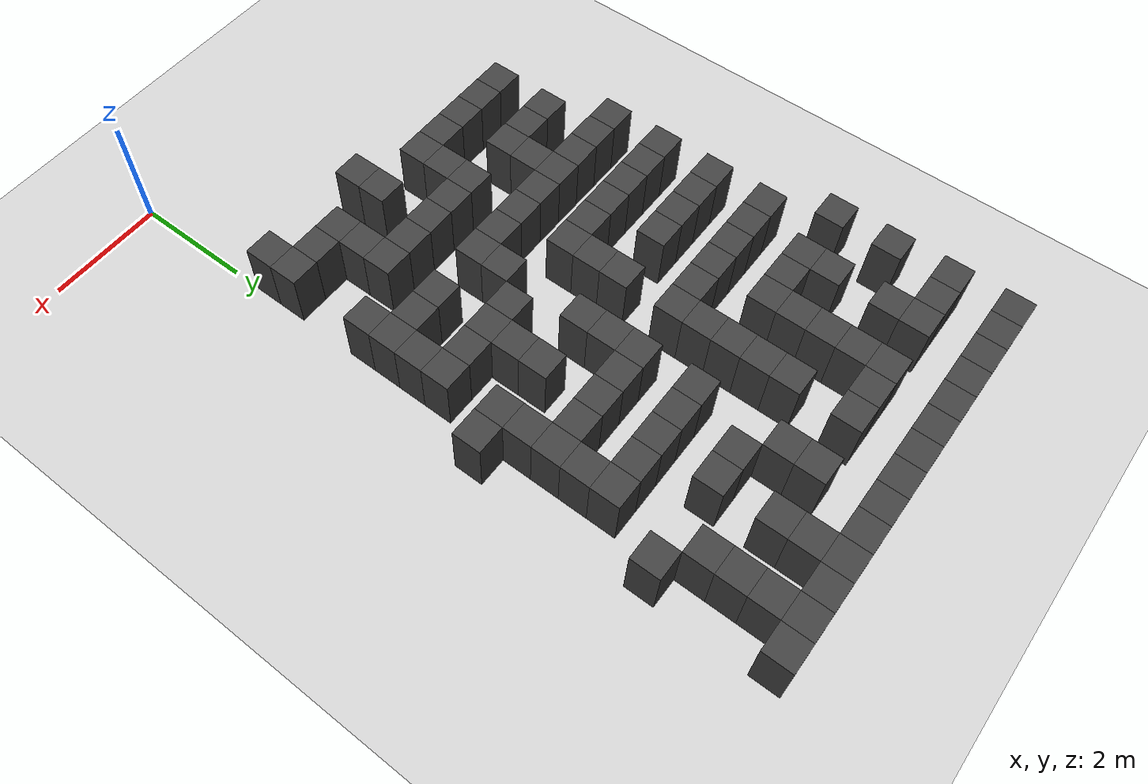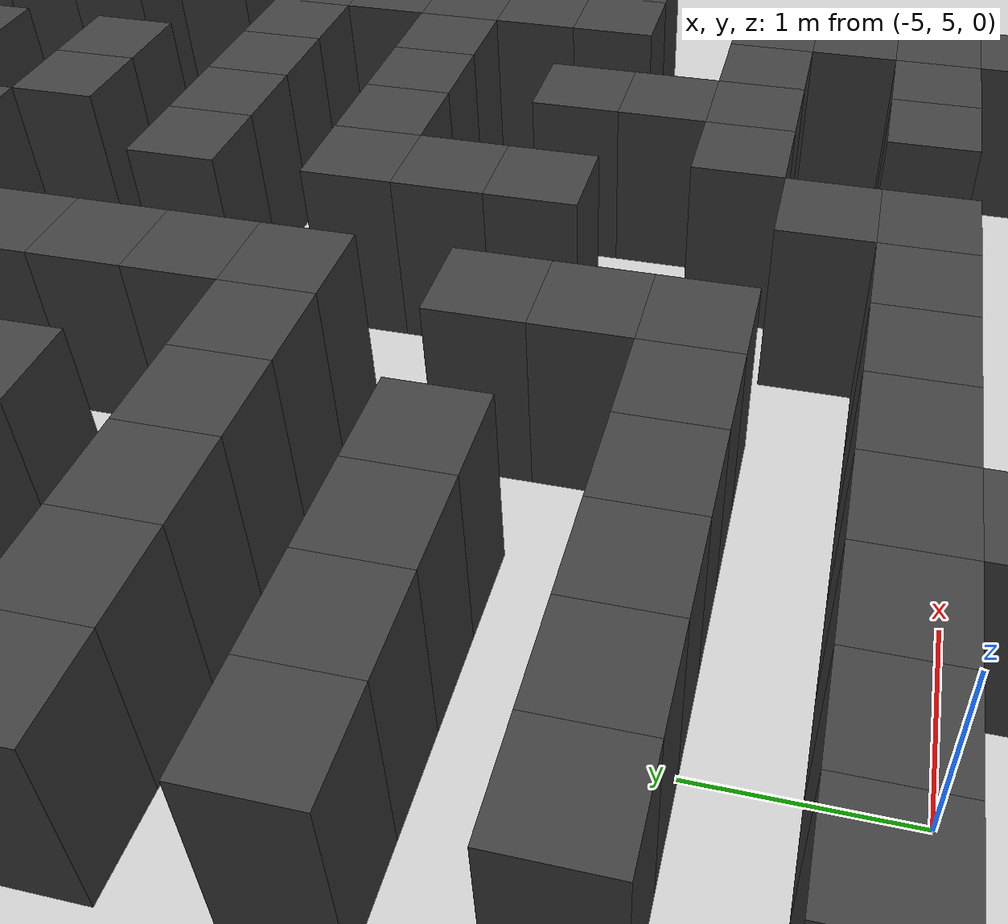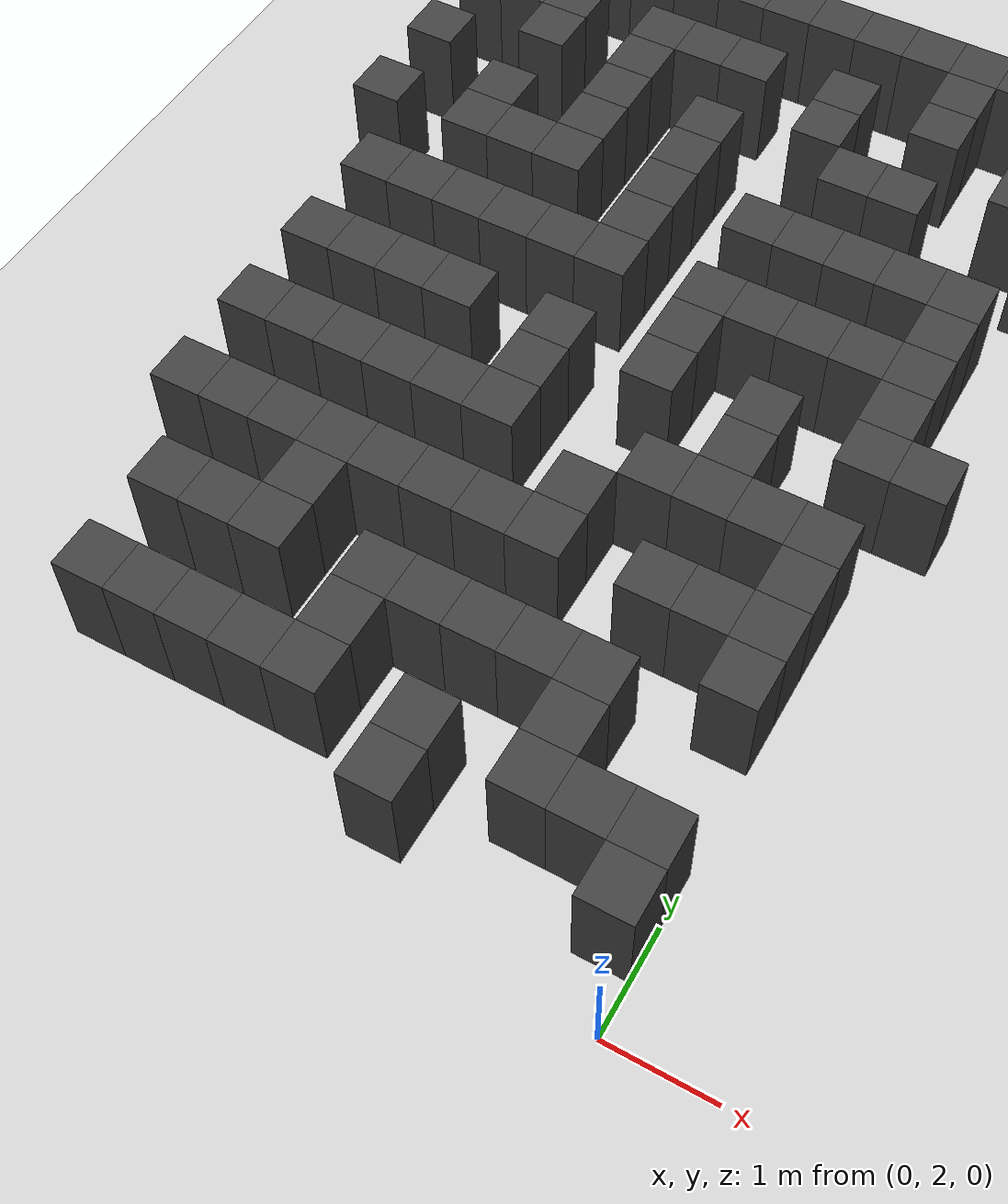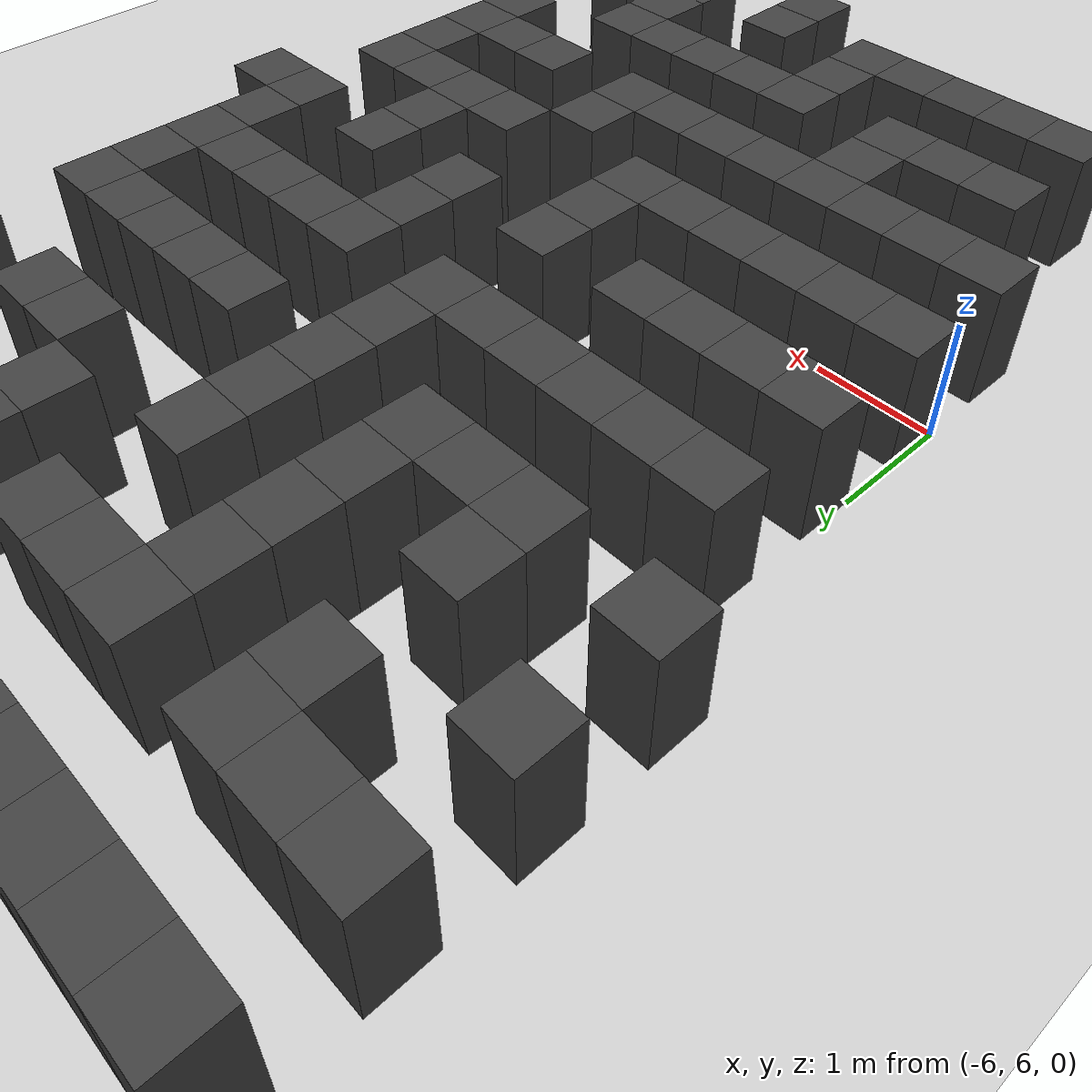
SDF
<sdf version="1.7">
 <world name="map_15293">
  <model name="ground_plane">
   <static>true</static>
   <link name="link">
    <collision name="collision">
     <geometry><plane><normal>0 0 1</normal><size>200 200</size></plane></geometry>
    </collision>
    <visual name="visual">
     <geometry><plane><normal>0 0 1</normal><size>200 200</size></plane></geometry>
     <material><ambient>0.8 0.8 0.8 1</ambient><diffuse>0.8 0.8 0.8 1</diffuse></material>
    </visual>
   </link>
  </model>
  <model name="maze_environment">
   <static>true</static>
   <link name="wall_12">
    <pose>-6.250 12.250 0.500 0 0 0</pose>
    <collision name="col"><geometry><box><size>0.5 0.5 1.0</size></box></geometry></collision>
    <visual name="vis">
     <geometry><box><size>0.5 0.5 1.0</size></box></geometry>
     <material><ambient>0.15 0.15 0.15 1</ambient><diffuse>0.25 0.25 0.25 1</diffuse></material>
    </visual>
   </link>
   <link name="wall_13">
    <pose>-5.750 12.250 0.500 0 0 0</pose>
    <collision name="col"><geometry><box><size>0.5 0.5 1.0</size></box></geometry></collision>
    <visual name="vis">
     <geometry><box><size>0.5 0.5 1.0</size></box></geometry>
     <material><ambient>0.15 0.15 0.15 1</ambient><diffuse>0.25 0.25 0.25 1</diffuse></material>
    </visual>
   </link>
   <link name="wall_14">
    <pose>-5.250 12.250 0.500 0 0 0</pose>
    <collision name="col"><geometry><box><size>0.5 0.5 1.0</size></box></geometry></collision>
    <visual name="vis">
     <geometry><box><size>0.5 0.5 1.0</size></box></geometry>
     <material><ambient>0.15 0.15 0.15 1</ambient><diffuse>0.25 0.25 0.25 1</diffuse></material>
    </visual>
   </link>
   <link name="wall_15">
    <pose>-4.750 12.250 0.500 0 0 0</pose>
    <collision name="col"><geometry><box><size>0.5 0.5 1.0</size></box></geometry></collision>
    <visual name="vis">
     <geometry><box><size>0.5 0.5 1.0</size></box></geometry>
     <material><ambient>0.15 0.15 0.15 1</ambient><diffuse>0.25 0.25 0.25 1</diffuse></material>
    </visual>
   </link>
   <link name="wall_16">
    <pose>-4.250 12.250 0.500 0 0 0</pose>
    <collision name="col"><geometry><box><size>0.5 0.5 1.0</size></box></geometry></collision>
    <visual name="vis">
     <geometry><box><size>0.5 0.5 1.0</size></box></geometry>
     <material><ambient>0.15 0.15 0.15 1</ambient><diffuse>0.25 0.25 0.25 1</diffuse></material>
    </visual>
   </link>
   <link name="wall_17">
    <pose>-3.750 12.250 0.500 0 0 0</pose>
    <collision name="col"><geometry><box><size>0.5 0.5 1.0</size></box></geometry></collision>
    <visual name="vis">
     <geometry><box><size>0.5 0.5 1.0</size></box></geometry>
     <material><ambient>0.15 0.15 0.15 1</ambient><diffuse>0.25 0.25 0.25 1</diffuse></material>
    </visual>
   </link>
   <link name="wall_18">
    <pose>-3.250 12.250 0.500 0 0 0</pose>
    <collision name="col"><geometry><box><size>0.5 0.5 1.0</size></box></geometry></collision>
    <visual name="vis">
     <geometry><box><size>0.5 0.5 1.0</size></box></geometry>
     <material><ambient>0.15 0.15 0.15 1</ambient><diffuse>0.25 0.25 0.25 1</diffuse></material>
    </visual>
   </link>
   <link name="wall_19">
    <pose>-2.750 12.250 0.500 0 0 0</pose>
    <collision name="col"><geometry><box><size>0.5 0.5 1.0</size></box></geometry></collision>
    <visual name="vis">
     <geometry><box><size>0.5 0.5 1.0</size></box></geometry>
     <material><ambient>0.15 0.15 0.15 1</ambient><diffuse>0.25 0.25 0.25 1</diffuse></material>
    </visual>
   </link>
   <link name="wall_20">
    <pose>-2.250 12.250 0.500 0 0 0</pose>
    <collision name="col"><geometry><box><size>0.5 0.5 1.0</size></box></geometry></collision>
    <visual name="vis">
     <geometry><box><size>0.5 0.5 1.0</size></box></geometry>
     <material><ambient>0.15 0.15 0.15 1</ambient><diffuse>0.25 0.25 0.25 1</diffuse></material>
    </visual>
   </link>
   <link name="wall_21">
    <pose>-1.750 12.250 0.500 0 0 0</pose>
    <collision name="col"><geometry><box><size>0.5 0.5 1.0</size></box></geometry></collision>
    <visual name="vis">
     <geometry><box><size>0.5 0.5 1.0</size></box></geometry>
     <material><ambient>0.15 0.15 0.15 1</ambient><diffuse>0.25 0.25 0.25 1</diffuse></material>
    </visual>
   </link>
   <link name="wall_22">
    <pose>-1.250 12.250 0.500 0 0 0</pose>
    <collision name="col"><geometry><box><size>0.5 0.5 1.0</size></box></geometry></collision>
    <visual name="vis">
     <geometry><box><size>0.5 0.5 1.0</size></box></geometry>
     <material><ambient>0.15 0.15 0.15 1</ambient><diffuse>0.25 0.25 0.25 1</diffuse></material>
    </visual>
   </link>
   <link name="wall_23">
    <pose>-0.750 12.250 0.500 0 0 0</pose>
    <collision name="col"><geometry><box><size>0.5 0.5 1.0</size></box></geometry></collision>
    <visual name="vis">
     <geometry><box><size>0.5 0.5 1.0</size></box></geometry>
     <material><ambient>0.15 0.15 0.15 1</ambient><diffuse>0.25 0.25 0.25 1</diffuse></material>
    </visual>
   </link>
   <link name="wall_24">
    <pose>-0.250 12.250 0.500 0 0 0</pose>
    <collision name="col"><geometry><box><size>0.5 0.5 1.0</size></box></geometry></collision>
    <visual name="vis">
     <geometry><box><size>0.5 0.5 1.0</size></box></geometry>
     <material><ambient>0.15 0.15 0.15 1</ambient><diffuse>0.25 0.25 0.25 1</diffuse></material>
    </visual>
   </link>
   <link name="wall_25">
    <pose>0.250 12.250 0.500 0 0 0</pose>
    <collision name="col"><geometry><box><size>0.5 0.5 1.0</size></box></geometry></collision>
    <visual name="vis">
     <geometry><box><size>0.5 0.5 1.0</size></box></geometry>
     <material><ambient>0.15 0.15 0.15 1</ambient><diffuse>0.25 0.25 0.25 1</diffuse></material>
    </visual>
   </link>
   <link name="wall_53">
    <pose>-1.250 11.750 0.500 0 0 0</pose>
    <collision name="col"><geometry><box><size>0.5 0.5 1.0</size></box></geometry></collision>
    <visual name="vis">
     <geometry><box><size>0.5 0.5 1.0</size></box></geometry>
     <material><ambient>0.15 0.15 0.15 1</ambient><diffuse>0.25 0.25 0.25 1</diffuse></material>
    </visual>
   </link>
   <link name="wall_54">
    <pose>-0.250 11.750 0.500 0 0 0</pose>
    <collision name="col"><geometry><box><size>0.5 0.5 1.0</size></box></geometry></collision>
    <visual name="vis">
     <geometry><box><size>0.5 0.5 1.0</size></box></geometry>
     <material><ambient>0.15 0.15 0.15 1</ambient><diffuse>0.25 0.25 0.25 1</diffuse></material>
    </visual>
   </link>
   <link name="wall_65">
    <pose>-6.250 11.250 0.500 0 0 0</pose>
    <collision name="col"><geometry><box><size>0.5 0.5 1.0</size></box></geometry></collision>
    <visual name="vis">
     <geometry><box><size>0.5 0.5 1.0</size></box></geometry>
     <material><ambient>0.15 0.15 0.15 1</ambient><diffuse>0.25 0.25 0.25 1</diffuse></material>
    </visual>
   </link>
   <link name="wall_66">
    <pose>-5.750 11.250 0.500 0 0 0</pose>
    <collision name="col"><geometry><box><size>0.5 0.5 1.0</size></box></geometry></collision>
    <visual name="vis">
     <geometry><box><size>0.5 0.5 1.0</size></box></geometry>
     <material><ambient>0.15 0.15 0.15 1</ambient><diffuse>0.25 0.25 0.25 1</diffuse></material>
    </visual>
   </link>
   <link name="wall_67">
    <pose>-5.250 11.250 0.500 0 0 0</pose>
    <collision name="col"><geometry><box><size>0.5 0.5 1.0</size></box></geometry></collision>
    <visual name="vis">
     <geometry><box><size>0.5 0.5 1.0</size></box></geometry>
     <material><ambient>0.15 0.15 0.15 1</ambient><diffuse>0.25 0.25 0.25 1</diffuse></material>
    </visual>
   </link>
   <link name="wall_68">
    <pose>-4.250 11.250 0.500 0 0 0</pose>
    <collision name="col"><geometry><box><size>0.5 0.5 1.0</size></box></geometry></collision>
    <visual name="vis">
     <geometry><box><size>0.5 0.5 1.0</size></box></geometry>
     <material><ambient>0.15 0.15 0.15 1</ambient><diffuse>0.25 0.25 0.25 1</diffuse></material>
    </visual>
   </link>
   <link name="wall_69">
    <pose>-3.750 11.250 0.500 0 0 0</pose>
    <collision name="col"><geometry><box><size>0.5 0.5 1.0</size></box></geometry></collision>
    <visual name="vis">
     <geometry><box><size>0.5 0.5 1.0</size></box></geometry>
     <material><ambient>0.15 0.15 0.15 1</ambient><diffuse>0.25 0.25 0.25 1</diffuse></material>
    </visual>
   </link>
   <link name="wall_70">
    <pose>-3.250 11.250 0.500 0 0 0</pose>
    <collision name="col"><geometry><box><size>0.5 0.5 1.0</size></box></geometry></collision>
    <visual name="vis">
     <geometry><box><size>0.5 0.5 1.0</size></box></geometry>
     <material><ambient>0.15 0.15 0.15 1</ambient><diffuse>0.25 0.25 0.25 1</diffuse></material>
    </visual>
   </link>
   <link name="wall_71">
    <pose>-2.250 11.250 0.500 0 0 0</pose>
    <collision name="col"><geometry><box><size>0.5 0.5 1.0</size></box></geometry></collision>
    <visual name="vis">
     <geometry><box><size>0.5 0.5 1.0</size></box></geometry>
     <material><ambient>0.15 0.15 0.15 1</ambient><diffuse>0.25 0.25 0.25 1</diffuse></material>
    </visual>
   </link>
   <link name="wall_72">
    <pose>-1.250 11.250 0.500 0 0 0</pose>
    <collision name="col"><geometry><box><size>0.5 0.5 1.0</size></box></geometry></collision>
    <visual name="vis">
     <geometry><box><size>0.5 0.5 1.0</size></box></geometry>
     <material><ambient>0.15 0.15 0.15 1</ambient><diffuse>0.25 0.25 0.25 1</diffuse></material>
    </visual>
   </link>
   <link name="wall_73">
    <pose>-0.250 11.250 0.500 0 0 0</pose>
    <collision name="col"><geometry><box><size>0.5 0.5 1.0</size></box></geometry></collision>
    <visual name="vis">
     <geometry><box><size>0.5 0.5 1.0</size></box></geometry>
     <material><ambient>0.15 0.15 0.15 1</ambient><diffuse>0.25 0.25 0.25 1</diffuse></material>
    </visual>
   </link>
   <link name="wall_91">
    <pose>-5.250 10.750 0.500 0 0 0</pose>
    <collision name="col"><geometry><box><size>0.5 0.5 1.0</size></box></geometry></collision>
    <visual name="vis">
     <geometry><box><size>0.5 0.5 1.0</size></box></geometry>
     <material><ambient>0.15 0.15 0.15 1</ambient><diffuse>0.25 0.25 0.25 1</diffuse></material>
    </visual>
   </link>
   <link name="wall_92">
    <pose>-4.250 10.750 0.500 0 0 0</pose>
    <collision name="col"><geometry><box><size>0.5 0.5 1.0</size></box></geometry></collision>
    <visual name="vis">
     <geometry><box><size>0.5 0.5 1.0</size></box></geometry>
     <material><ambient>0.15 0.15 0.15 1</ambient><diffuse>0.25 0.25 0.25 1</diffuse></material>
    </visual>
   </link>
   <link name="wall_93">
    <pose>-2.250 10.750 0.500 0 0 0</pose>
    <collision name="col"><geometry><box><size>0.5 0.5 1.0</size></box></geometry></collision>
    <visual name="vis">
     <geometry><box><size>0.5 0.5 1.0</size></box></geometry>
     <material><ambient>0.15 0.15 0.15 1</ambient><diffuse>0.25 0.25 0.25 1</diffuse></material>
    </visual>
   </link>
   <link name="wall_94">
    <pose>-0.250 10.750 0.500 0 0 0</pose>
    <collision name="col"><geometry><box><size>0.5 0.5 1.0</size></box></geometry></collision>
    <visual name="vis">
     <geometry><box><size>0.5 0.5 1.0</size></box></geometry>
     <material><ambient>0.15 0.15 0.15 1</ambient><diffuse>0.25 0.25 0.25 1</diffuse></material>
    </visual>
   </link>
   <link name="wall_110">
    <pose>-6.250 10.250 0.500 0 0 0</pose>
    <collision name="col"><geometry><box><size>0.5 0.5 1.0</size></box></geometry></collision>
    <visual name="vis">
     <geometry><box><size>0.5 0.5 1.0</size></box></geometry>
     <material><ambient>0.15 0.15 0.15 1</ambient><diffuse>0.25 0.25 0.25 1</diffuse></material>
    </visual>
   </link>
   <link name="wall_111">
    <pose>-4.250 10.250 0.500 0 0 0</pose>
    <collision name="col"><geometry><box><size>0.5 0.5 1.0</size></box></geometry></collision>
    <visual name="vis">
     <geometry><box><size>0.5 0.5 1.0</size></box></geometry>
     <material><ambient>0.15 0.15 0.15 1</ambient><diffuse>0.25 0.25 0.25 1</diffuse></material>
    </visual>
   </link>
   <link name="wall_112">
    <pose>-3.250 10.250 0.500 0 0 0</pose>
    <collision name="col"><geometry><box><size>0.5 0.5 1.0</size></box></geometry></collision>
    <visual name="vis">
     <geometry><box><size>0.5 0.5 1.0</size></box></geometry>
     <material><ambient>0.15 0.15 0.15 1</ambient><diffuse>0.25 0.25 0.25 1</diffuse></material>
    </visual>
   </link>
   <link name="wall_113">
    <pose>-1.750 10.250 0.500 0 0 0</pose>
    <collision name="col"><geometry><box><size>0.5 0.5 1.0</size></box></geometry></collision>
    <visual name="vis">
     <geometry><box><size>0.5 0.5 1.0</size></box></geometry>
     <material><ambient>0.15 0.15 0.15 1</ambient><diffuse>0.25 0.25 0.25 1</diffuse></material>
    </visual>
   </link>
   <link name="wall_114">
    <pose>-1.250 10.250 0.500 0 0 0</pose>
    <collision name="col"><geometry><box><size>0.5 0.5 1.0</size></box></geometry></collision>
    <visual name="vis">
     <geometry><box><size>0.5 0.5 1.0</size></box></geometry>
     <material><ambient>0.15 0.15 0.15 1</ambient><diffuse>0.25 0.25 0.25 1</diffuse></material>
    </visual>
   </link>
   <link name="wall_115">
    <pose>0.250 10.250 0.500 0 0 0</pose>
    <collision name="col"><geometry><box><size>0.5 0.5 1.0</size></box></geometry></collision>
    <visual name="vis">
     <geometry><box><size>0.5 0.5 1.0</size></box></geometry>
     <material><ambient>0.15 0.15 0.15 1</ambient><diffuse>0.25 0.25 0.25 1</diffuse></material>
    </visual>
   </link>
   <link name="wall_136">
    <pose>-5.250 9.750 0.500 0 0 0</pose>
    <collision name="col"><geometry><box><size>0.5 0.5 1.0</size></box></geometry></collision>
    <visual name="vis">
     <geometry><box><size>0.5 0.5 1.0</size></box></geometry>
     <material><ambient>0.15 0.15 0.15 1</ambient><diffuse>0.25 0.25 0.25 1</diffuse></material>
    </visual>
   </link>
   <link name="wall_137">
    <pose>-4.250 9.750 0.500 0 0 0</pose>
    <collision name="col"><geometry><box><size>0.5 0.5 1.0</size></box></geometry></collision>
    <visual name="vis">
     <geometry><box><size>0.5 0.5 1.0</size></box></geometry>
     <material><ambient>0.15 0.15 0.15 1</ambient><diffuse>0.25 0.25 0.25 1</diffuse></material>
    </visual>
   </link>
   <link name="wall_138">
    <pose>-3.250 9.750 0.500 0 0 0</pose>
    <collision name="col"><geometry><box><size>0.5 0.5 1.0</size></box></geometry></collision>
    <visual name="vis">
     <geometry><box><size>0.5 0.5 1.0</size></box></geometry>
     <material><ambient>0.15 0.15 0.15 1</ambient><diffuse>0.25 0.25 0.25 1</diffuse></material>
    </visual>
   </link>
   <link name="wall_153">
    <pose>-6.250 9.250 0.500 0 0 0</pose>
    <collision name="col"><geometry><box><size>0.5 0.5 1.0</size></box></geometry></collision>
    <visual name="vis">
     <geometry><box><size>0.5 0.5 1.0</size></box></geometry>
     <material><ambient>0.15 0.15 0.15 1</ambient><diffuse>0.25 0.25 0.25 1</diffuse></material>
    </visual>
   </link>
   <link name="wall_154">
    <pose>-5.250 9.250 0.500 0 0 0</pose>
    <collision name="col"><geometry><box><size>0.5 0.5 1.0</size></box></geometry></collision>
    <visual name="vis">
     <geometry><box><size>0.5 0.5 1.0</size></box></geometry>
     <material><ambient>0.15 0.15 0.15 1</ambient><diffuse>0.25 0.25 0.25 1</diffuse></material>
    </visual>
   </link>
   <link name="wall_155">
    <pose>-4.750 9.250 0.500 0 0 0</pose>
    <collision name="col"><geometry><box><size>0.5 0.5 1.0</size></box></geometry></collision>
    <visual name="vis">
     <geometry><box><size>0.5 0.5 1.0</size></box></geometry>
     <material><ambient>0.15 0.15 0.15 1</ambient><diffuse>0.25 0.25 0.25 1</diffuse></material>
    </visual>
   </link>
   <link name="wall_156">
    <pose>-4.250 9.250 0.500 0 0 0</pose>
    <collision name="col"><geometry><box><size>0.5 0.5 1.0</size></box></geometry></collision>
    <visual name="vis">
     <geometry><box><size>0.5 0.5 1.0</size></box></geometry>
     <material><ambient>0.15 0.15 0.15 1</ambient><diffuse>0.25 0.25 0.25 1</diffuse></material>
    </visual>
   </link>
   <link name="wall_157">
    <pose>-3.250 9.250 0.500 0 0 0</pose>
    <collision name="col"><geometry><box><size>0.5 0.5 1.0</size></box></geometry></collision>
    <visual name="vis">
     <geometry><box><size>0.5 0.5 1.0</size></box></geometry>
     <material><ambient>0.15 0.15 0.15 1</ambient><diffuse>0.25 0.25 0.25 1</diffuse></material>
    </visual>
   </link>
   <link name="wall_158">
    <pose>-2.250 9.250 0.500 0 0 0</pose>
    <collision name="col"><geometry><box><size>0.5 0.5 1.0</size></box></geometry></collision>
    <visual name="vis">
     <geometry><box><size>0.5 0.5 1.0</size></box></geometry>
     <material><ambient>0.15 0.15 0.15 1</ambient><diffuse>0.25 0.25 0.25 1</diffuse></material>
    </visual>
   </link>
   <link name="wall_159">
    <pose>-1.750 9.250 0.500 0 0 0</pose>
    <collision name="col"><geometry><box><size>0.5 0.5 1.0</size></box></geometry></collision>
    <visual name="vis">
     <geometry><box><size>0.5 0.5 1.0</size></box></geometry>
     <material><ambient>0.15 0.15 0.15 1</ambient><diffuse>0.25 0.25 0.25 1</diffuse></material>
    </visual>
   </link>
   <link name="wall_160">
    <pose>-1.250 9.250 0.500 0 0 0</pose>
    <collision name="col"><geometry><box><size>0.5 0.5 1.0</size></box></geometry></collision>
    <visual name="vis">
     <geometry><box><size>0.5 0.5 1.0</size></box></geometry>
     <material><ambient>0.15 0.15 0.15 1</ambient><diffuse>0.25 0.25 0.25 1</diffuse></material>
    </visual>
   </link>
   <link name="wall_161">
    <pose>-0.750 9.250 0.500 0 0 0</pose>
    <collision name="col"><geometry><box><size>0.5 0.5 1.0</size></box></geometry></collision>
    <visual name="vis">
     <geometry><box><size>0.5 0.5 1.0</size></box></geometry>
     <material><ambient>0.15 0.15 0.15 1</ambient><diffuse>0.25 0.25 0.25 1</diffuse></material>
    </visual>
   </link>
   <link name="wall_162">
    <pose>-0.250 9.250 0.500 0 0 0</pose>
    <collision name="col"><geometry><box><size>0.5 0.5 1.0</size></box></geometry></collision>
    <visual name="vis">
     <geometry><box><size>0.5 0.5 1.0</size></box></geometry>
     <material><ambient>0.15 0.15 0.15 1</ambient><diffuse>0.25 0.25 0.25 1</diffuse></material>
    </visual>
   </link>
   <link name="wall_182">
    <pose>-3.250 8.750 0.500 0 0 0</pose>
    <collision name="col"><geometry><box><size>0.5 0.5 1.0</size></box></geometry></collision>
    <visual name="vis">
     <geometry><box><size>0.5 0.5 1.0</size></box></geometry>
     <material><ambient>0.15 0.15 0.15 1</ambient><diffuse>0.25 0.25 0.25 1</diffuse></material>
    </visual>
   </link>
   <link name="wall_183">
    <pose>-0.250 8.750 0.500 0 0 0</pose>
    <collision name="col"><geometry><box><size>0.5 0.5 1.0</size></box></geometry></collision>
    <visual name="vis">
     <geometry><box><size>0.5 0.5 1.0</size></box></geometry>
     <material><ambient>0.15 0.15 0.15 1</ambient><diffuse>0.25 0.25 0.25 1</diffuse></material>
    </visual>
   </link>
   <link name="wall_200">
    <pose>-5.750 8.250 0.500 0 0 0</pose>
    <collision name="col"><geometry><box><size>0.5 0.5 1.0</size></box></geometry></collision>
    <visual name="vis">
     <geometry><box><size>0.5 0.5 1.0</size></box></geometry>
     <material><ambient>0.15 0.15 0.15 1</ambient><diffuse>0.25 0.25 0.25 1</diffuse></material>
    </visual>
   </link>
   <link name="wall_201">
    <pose>-5.250 8.250 0.500 0 0 0</pose>
    <collision name="col"><geometry><box><size>0.5 0.5 1.0</size></box></geometry></collision>
    <visual name="vis">
     <geometry><box><size>0.5 0.5 1.0</size></box></geometry>
     <material><ambient>0.15 0.15 0.15 1</ambient><diffuse>0.25 0.25 0.25 1</diffuse></material>
    </visual>
   </link>
   <link name="wall_202">
    <pose>-4.750 8.250 0.500 0 0 0</pose>
    <collision name="col"><geometry><box><size>0.5 0.5 1.0</size></box></geometry></collision>
    <visual name="vis">
     <geometry><box><size>0.5 0.5 1.0</size></box></geometry>
     <material><ambient>0.15 0.15 0.15 1</ambient><diffuse>0.25 0.25 0.25 1</diffuse></material>
    </visual>
   </link>
   <link name="wall_203">
    <pose>-4.250 8.250 0.500 0 0 0</pose>
    <collision name="col"><geometry><box><size>0.5 0.5 1.0</size></box></geometry></collision>
    <visual name="vis">
     <geometry><box><size>0.5 0.5 1.0</size></box></geometry>
     <material><ambient>0.15 0.15 0.15 1</ambient><diffuse>0.25 0.25 0.25 1</diffuse></material>
    </visual>
   </link>
   <link name="wall_204">
    <pose>-3.750 8.250 0.500 0 0 0</pose>
    <collision name="col"><geometry><box><size>0.5 0.5 1.0</size></box></geometry></collision>
    <visual name="vis">
     <geometry><box><size>0.5 0.5 1.0</size></box></geometry>
     <material><ambient>0.15 0.15 0.15 1</ambient><diffuse>0.25 0.25 0.25 1</diffuse></material>
    </visual>
   </link>
   <link name="wall_205">
    <pose>-3.250 8.250 0.500 0 0 0</pose>
    <collision name="col"><geometry><box><size>0.5 0.5 1.0</size></box></geometry></collision>
    <visual name="vis">
     <geometry><box><size>0.5 0.5 1.0</size></box></geometry>
     <material><ambient>0.15 0.15 0.15 1</ambient><diffuse>0.25 0.25 0.25 1</diffuse></material>
    </visual>
   </link>
   <link name="wall_206">
    <pose>-2.250 8.250 0.500 0 0 0</pose>
    <collision name="col"><geometry><box><size>0.5 0.5 1.0</size></box></geometry></collision>
    <visual name="vis">
     <geometry><box><size>0.5 0.5 1.0</size></box></geometry>
     <material><ambient>0.15 0.15 0.15 1</ambient><diffuse>0.25 0.25 0.25 1</diffuse></material>
    </visual>
   </link>
   <link name="wall_207">
    <pose>-1.750 8.250 0.500 0 0 0</pose>
    <collision name="col"><geometry><box><size>0.5 0.5 1.0</size></box></geometry></collision>
    <visual name="vis">
     <geometry><box><size>0.5 0.5 1.0</size></box></geometry>
     <material><ambient>0.15 0.15 0.15 1</ambient><diffuse>0.25 0.25 0.25 1</diffuse></material>
    </visual>
   </link>
   <link name="wall_208">
    <pose>-1.250 8.250 0.500 0 0 0</pose>
    <collision name="col"><geometry><box><size>0.5 0.5 1.0</size></box></geometry></collision>
    <visual name="vis">
     <geometry><box><size>0.5 0.5 1.0</size></box></geometry>
     <material><ambient>0.15 0.15 0.15 1</ambient><diffuse>0.25 0.25 0.25 1</diffuse></material>
    </visual>
   </link>
   <link name="wall_209">
    <pose>-0.750 8.250 0.500 0 0 0</pose>
    <collision name="col"><geometry><box><size>0.5 0.5 1.0</size></box></geometry></collision>
    <visual name="vis">
     <geometry><box><size>0.5 0.5 1.0</size></box></geometry>
     <material><ambient>0.15 0.15 0.15 1</ambient><diffuse>0.25 0.25 0.25 1</diffuse></material>
    </visual>
   </link>
   <link name="wall_210">
    <pose>-0.250 8.250 0.500 0 0 0</pose>
    <collision name="col"><geometry><box><size>0.5 0.5 1.0</size></box></geometry></collision>
    <visual name="vis">
     <geometry><box><size>0.5 0.5 1.0</size></box></geometry>
     <material><ambient>0.15 0.15 0.15 1</ambient><diffuse>0.25 0.25 0.25 1</diffuse></material>
    </visual>
   </link>
   <link name="wall_226">
    <pose>-2.250 7.750 0.500 0 0 0</pose>
    <collision name="col"><geometry><box><size>0.5 0.5 1.0</size></box></geometry></collision>
    <visual name="vis">
     <geometry><box><size>0.5 0.5 1.0</size></box></geometry>
     <material><ambient>0.15 0.15 0.15 1</ambient><diffuse>0.25 0.25 0.25 1</diffuse></material>
    </visual>
   </link>
   <link name="wall_227">
    <pose>-0.250 7.750 0.500 0 0 0</pose>
    <collision name="col"><geometry><box><size>0.5 0.5 1.0</size></box></geometry></collision>
    <visual name="vis">
     <geometry><box><size>0.5 0.5 1.0</size></box></geometry>
     <material><ambient>0.15 0.15 0.15 1</ambient><diffuse>0.25 0.25 0.25 1</diffuse></material>
    </visual>
   </link>
   <link name="wall_245">
    <pose>-5.750 7.250 0.500 0 0 0</pose>
    <collision name="col"><geometry><box><size>0.5 0.5 1.0</size></box></geometry></collision>
    <visual name="vis">
     <geometry><box><size>0.5 0.5 1.0</size></box></geometry>
     <material><ambient>0.15 0.15 0.15 1</ambient><diffuse>0.25 0.25 0.25 1</diffuse></material>
    </visual>
   </link>
   <link name="wall_246">
    <pose>-5.250 7.250 0.500 0 0 0</pose>
    <collision name="col"><geometry><box><size>0.5 0.5 1.0</size></box></geometry></collision>
    <visual name="vis">
     <geometry><box><size>0.5 0.5 1.0</size></box></geometry>
     <material><ambient>0.15 0.15 0.15 1</ambient><diffuse>0.25 0.25 0.25 1</diffuse></material>
    </visual>
   </link>
   <link name="wall_247">
    <pose>-4.750 7.250 0.500 0 0 0</pose>
    <collision name="col"><geometry><box><size>0.5 0.5 1.0</size></box></geometry></collision>
    <visual name="vis">
     <geometry><box><size>0.5 0.5 1.0</size></box></geometry>
     <material><ambient>0.15 0.15 0.15 1</ambient><diffuse>0.25 0.25 0.25 1</diffuse></material>
    </visual>
   </link>
   <link name="wall_248">
    <pose>-4.250 7.250 0.500 0 0 0</pose>
    <collision name="col"><geometry><box><size>0.5 0.5 1.0</size></box></geometry></collision>
    <visual name="vis">
     <geometry><box><size>0.5 0.5 1.0</size></box></geometry>
     <material><ambient>0.15 0.15 0.15 1</ambient><diffuse>0.25 0.25 0.25 1</diffuse></material>
    </visual>
   </link>
   <link name="wall_249">
    <pose>-3.250 7.250 0.500 0 0 0</pose>
    <collision name="col"><geometry><box><size>0.5 0.5 1.0</size></box></geometry></collision>
    <visual name="vis">
     <geometry><box><size>0.5 0.5 1.0</size></box></geometry>
     <material><ambient>0.15 0.15 0.15 1</ambient><diffuse>0.25 0.25 0.25 1</diffuse></material>
    </visual>
   </link>
   <link name="wall_250">
    <pose>-2.250 7.250 0.500 0 0 0</pose>
    <collision name="col"><geometry><box><size>0.5 0.5 1.0</size></box></geometry></collision>
    <visual name="vis">
     <geometry><box><size>0.5 0.5 1.0</size></box></geometry>
     <material><ambient>0.15 0.15 0.15 1</ambient><diffuse>0.25 0.25 0.25 1</diffuse></material>
    </visual>
   </link>
   <link name="wall_251">
    <pose>-1.250 7.250 0.500 0 0 0</pose>
    <collision name="col"><geometry><box><size>0.5 0.5 1.0</size></box></geometry></collision>
    <visual name="vis">
     <geometry><box><size>0.5 0.5 1.0</size></box></geometry>
     <material><ambient>0.15 0.15 0.15 1</ambient><diffuse>0.25 0.25 0.25 1</diffuse></material>
    </visual>
   </link>
   <link name="wall_252">
    <pose>-0.250 7.250 0.500 0 0 0</pose>
    <collision name="col"><geometry><box><size>0.5 0.5 1.0</size></box></geometry></collision>
    <visual name="vis">
     <geometry><box><size>0.5 0.5 1.0</size></box></geometry>
     <material><ambient>0.15 0.15 0.15 1</ambient><diffuse>0.25 0.25 0.25 1</diffuse></material>
    </visual>
   </link>
   <link name="wall_253">
    <pose>0.250 7.250 0.500 0 0 0</pose>
    <collision name="col"><geometry><box><size>0.5 0.5 1.0</size></box></geometry></collision>
    <visual name="vis">
     <geometry><box><size>0.5 0.5 1.0</size></box></geometry>
     <material><ambient>0.15 0.15 0.15 1</ambient><diffuse>0.25 0.25 0.25 1</diffuse></material>
    </visual>
   </link>
   <link name="wall_272">
    <pose>-3.250 6.750 0.500 0 0 0</pose>
    <collision name="col"><geometry><box><size>0.5 0.5 1.0</size></box></geometry></collision>
    <visual name="vis">
     <geometry><box><size>0.5 0.5 1.0</size></box></geometry>
     <material><ambient>0.15 0.15 0.15 1</ambient><diffuse>0.25 0.25 0.25 1</diffuse></material>
    </visual>
   </link>
   <link name="wall_273">
    <pose>-1.250 6.750 0.500 0 0 0</pose>
    <collision name="col"><geometry><box><size>0.5 0.5 1.0</size></box></geometry></collision>
    <visual name="vis">
     <geometry><box><size>0.5 0.5 1.0</size></box></geometry>
     <material><ambient>0.15 0.15 0.15 1</ambient><diffuse>0.25 0.25 0.25 1</diffuse></material>
    </visual>
   </link>
   <link name="wall_293">
    <pose>-5.750 6.250 0.500 0 0 0</pose>
    <collision name="col"><geometry><box><size>0.5 0.5 1.0</size></box></geometry></collision>
    <visual name="vis">
     <geometry><box><size>0.5 0.5 1.0</size></box></geometry>
     <material><ambient>0.15 0.15 0.15 1</ambient><diffuse>0.25 0.25 0.25 1</diffuse></material>
    </visual>
   </link>
   <link name="wall_294">
    <pose>-5.250 6.250 0.500 0 0 0</pose>
    <collision name="col"><geometry><box><size>0.5 0.5 1.0</size></box></geometry></collision>
    <visual name="vis">
     <geometry><box><size>0.5 0.5 1.0</size></box></geometry>
     <material><ambient>0.15 0.15 0.15 1</ambient><diffuse>0.25 0.25 0.25 1</diffuse></material>
    </visual>
   </link>
   <link name="wall_295">
    <pose>-4.750 6.250 0.500 0 0 0</pose>
    <collision name="col"><geometry><box><size>0.5 0.5 1.0</size></box></geometry></collision>
    <visual name="vis">
     <geometry><box><size>0.5 0.5 1.0</size></box></geometry>
     <material><ambient>0.15 0.15 0.15 1</ambient><diffuse>0.25 0.25 0.25 1</diffuse></material>
    </visual>
   </link>
   <link name="wall_296">
    <pose>-4.250 6.250 0.500 0 0 0</pose>
    <collision name="col"><geometry><box><size>0.5 0.5 1.0</size></box></geometry></collision>
    <visual name="vis">
     <geometry><box><size>0.5 0.5 1.0</size></box></geometry>
     <material><ambient>0.15 0.15 0.15 1</ambient><diffuse>0.25 0.25 0.25 1</diffuse></material>
    </visual>
   </link>
   <link name="wall_297">
    <pose>-3.750 6.250 0.500 0 0 0</pose>
    <collision name="col"><geometry><box><size>0.5 0.5 1.0</size></box></geometry></collision>
    <visual name="vis">
     <geometry><box><size>0.5 0.5 1.0</size></box></geometry>
     <material><ambient>0.15 0.15 0.15 1</ambient><diffuse>0.25 0.25 0.25 1</diffuse></material>
    </visual>
   </link>
   <link name="wall_298">
    <pose>-3.250 6.250 0.500 0 0 0</pose>
    <collision name="col"><geometry><box><size>0.5 0.5 1.0</size></box></geometry></collision>
    <visual name="vis">
     <geometry><box><size>0.5 0.5 1.0</size></box></geometry>
     <material><ambient>0.15 0.15 0.15 1</ambient><diffuse>0.25 0.25 0.25 1</diffuse></material>
    </visual>
   </link>
   <link name="wall_299">
    <pose>-1.750 6.250 0.500 0 0 0</pose>
    <collision name="col"><geometry><box><size>0.5 0.5 1.0</size></box></geometry></collision>
    <visual name="vis">
     <geometry><box><size>0.5 0.5 1.0</size></box></geometry>
     <material><ambient>0.15 0.15 0.15 1</ambient><diffuse>0.25 0.25 0.25 1</diffuse></material>
    </visual>
   </link>
   <link name="wall_300">
    <pose>-1.250 6.250 0.500 0 0 0</pose>
    <collision name="col"><geometry><box><size>0.5 0.5 1.0</size></box></geometry></collision>
    <visual name="vis">
     <geometry><box><size>0.5 0.5 1.0</size></box></geometry>
     <material><ambient>0.15 0.15 0.15 1</ambient><diffuse>0.25 0.25 0.25 1</diffuse></material>
    </visual>
   </link>
   <link name="wall_301">
    <pose>-0.750 6.250 0.500 0 0 0</pose>
    <collision name="col"><geometry><box><size>0.5 0.5 1.0</size></box></geometry></collision>
    <visual name="vis">
     <geometry><box><size>0.5 0.5 1.0</size></box></geometry>
     <material><ambient>0.15 0.15 0.15 1</ambient><diffuse>0.25 0.25 0.25 1</diffuse></material>
    </visual>
   </link>
   <link name="wall_302">
    <pose>-0.250 6.250 0.500 0 0 0</pose>
    <collision name="col"><geometry><box><size>0.5 0.5 1.0</size></box></geometry></collision>
    <visual name="vis">
     <geometry><box><size>0.5 0.5 1.0</size></box></geometry>
     <material><ambient>0.15 0.15 0.15 1</ambient><diffuse>0.25 0.25 0.25 1</diffuse></material>
    </visual>
   </link>
   <link name="wall_320">
    <pose>-2.250 5.750 0.500 0 0 0</pose>
    <collision name="col"><geometry><box><size>0.5 0.5 1.0</size></box></geometry></collision>
    <visual name="vis">
     <geometry><box><size>0.5 0.5 1.0</size></box></geometry>
     <material><ambient>0.15 0.15 0.15 1</ambient><diffuse>0.25 0.25 0.25 1</diffuse></material>
    </visual>
   </link>
   <link name="wall_321">
    <pose>-0.250 5.750 0.500 0 0 0</pose>
    <collision name="col"><geometry><box><size>0.5 0.5 1.0</size></box></geometry></collision>
    <visual name="vis">
     <geometry><box><size>0.5 0.5 1.0</size></box></geometry>
     <material><ambient>0.15 0.15 0.15 1</ambient><diffuse>0.25 0.25 0.25 1</diffuse></material>
    </visual>
   </link>
   <link name="wall_338">
    <pose>-5.750 5.250 0.500 0 0 0</pose>
    <collision name="col"><geometry><box><size>0.5 0.5 1.0</size></box></geometry></collision>
    <visual name="vis">
     <geometry><box><size>0.5 0.5 1.0</size></box></geometry>
     <material><ambient>0.15 0.15 0.15 1</ambient><diffuse>0.25 0.25 0.25 1</diffuse></material>
    </visual>
   </link>
   <link name="wall_339">
    <pose>-5.250 5.250 0.500 0 0 0</pose>
    <collision name="col"><geometry><box><size>0.5 0.5 1.0</size></box></geometry></collision>
    <visual name="vis">
     <geometry><box><size>0.5 0.5 1.0</size></box></geometry>
     <material><ambient>0.15 0.15 0.15 1</ambient><diffuse>0.25 0.25 0.25 1</diffuse></material>
    </visual>
   </link>
   <link name="wall_340">
    <pose>-4.750 5.250 0.500 0 0 0</pose>
    <collision name="col"><geometry><box><size>0.5 0.5 1.0</size></box></geometry></collision>
    <visual name="vis">
     <geometry><box><size>0.5 0.5 1.0</size></box></geometry>
     <material><ambient>0.15 0.15 0.15 1</ambient><diffuse>0.25 0.25 0.25 1</diffuse></material>
    </visual>
   </link>
   <link name="wall_341">
    <pose>-4.250 5.250 0.500 0 0 0</pose>
    <collision name="col"><geometry><box><size>0.5 0.5 1.0</size></box></geometry></collision>
    <visual name="vis">
     <geometry><box><size>0.5 0.5 1.0</size></box></geometry>
     <material><ambient>0.15 0.15 0.15 1</ambient><diffuse>0.25 0.25 0.25 1</diffuse></material>
    </visual>
   </link>
   <link name="wall_342">
    <pose>-3.750 5.250 0.500 0 0 0</pose>
    <collision name="col"><geometry><box><size>0.5 0.5 1.0</size></box></geometry></collision>
    <visual name="vis">
     <geometry><box><size>0.5 0.5 1.0</size></box></geometry>
     <material><ambient>0.15 0.15 0.15 1</ambient><diffuse>0.25 0.25 0.25 1</diffuse></material>
    </visual>
   </link>
   <link name="wall_343">
    <pose>-3.250 5.250 0.500 0 0 0</pose>
    <collision name="col"><geometry><box><size>0.5 0.5 1.0</size></box></geometry></collision>
    <visual name="vis">
     <geometry><box><size>0.5 0.5 1.0</size></box></geometry>
     <material><ambient>0.15 0.15 0.15 1</ambient><diffuse>0.25 0.25 0.25 1</diffuse></material>
    </visual>
   </link>
   <link name="wall_344">
    <pose>-2.750 5.250 0.500 0 0 0</pose>
    <collision name="col"><geometry><box><size>0.5 0.5 1.0</size></box></geometry></collision>
    <visual name="vis">
     <geometry><box><size>0.5 0.5 1.0</size></box></geometry>
     <material><ambient>0.15 0.15 0.15 1</ambient><diffuse>0.25 0.25 0.25 1</diffuse></material>
    </visual>
   </link>
   <link name="wall_345">
    <pose>-2.250 5.250 0.500 0 0 0</pose>
    <collision name="col"><geometry><box><size>0.5 0.5 1.0</size></box></geometry></collision>
    <visual name="vis">
     <geometry><box><size>0.5 0.5 1.0</size></box></geometry>
     <material><ambient>0.15 0.15 0.15 1</ambient><diffuse>0.25 0.25 0.25 1</diffuse></material>
    </visual>
   </link>
   <link name="wall_346">
    <pose>-1.250 5.250 0.500 0 0 0</pose>
    <collision name="col"><geometry><box><size>0.5 0.5 1.0</size></box></geometry></collision>
    <visual name="vis">
     <geometry><box><size>0.5 0.5 1.0</size></box></geometry>
     <material><ambient>0.15 0.15 0.15 1</ambient><diffuse>0.25 0.25 0.25 1</diffuse></material>
    </visual>
   </link>
   <link name="wall_347">
    <pose>-0.750 5.250 0.500 0 0 0</pose>
    <collision name="col"><geometry><box><size>0.5 0.5 1.0</size></box></geometry></collision>
    <visual name="vis">
     <geometry><box><size>0.5 0.5 1.0</size></box></geometry>
     <material><ambient>0.15 0.15 0.15 1</ambient><diffuse>0.25 0.25 0.25 1</diffuse></material>
    </visual>
   </link>
   <link name="wall_348">
    <pose>-0.250 5.250 0.500 0 0 0</pose>
    <collision name="col"><geometry><box><size>0.5 0.5 1.0</size></box></geometry></collision>
    <visual name="vis">
     <geometry><box><size>0.5 0.5 1.0</size></box></geometry>
     <material><ambient>0.15 0.15 0.15 1</ambient><diffuse>0.25 0.25 0.25 1</diffuse></material>
    </visual>
   </link>
   <link name="wall_366">
    <pose>-4.250 4.750 0.500 0 0 0</pose>
    <collision name="col"><geometry><box><size>0.5 0.5 1.0</size></box></geometry></collision>
    <visual name="vis">
     <geometry><box><size>0.5 0.5 1.0</size></box></geometry>
     <material><ambient>0.15 0.15 0.15 1</ambient><diffuse>0.25 0.25 0.25 1</diffuse></material>
    </visual>
   </link>
   <link name="wall_367">
    <pose>-0.250 4.750 0.500 0 0 0</pose>
    <collision name="col"><geometry><box><size>0.5 0.5 1.0</size></box></geometry></collision>
    <visual name="vis">
     <geometry><box><size>0.5 0.5 1.0</size></box></geometry>
     <material><ambient>0.15 0.15 0.15 1</ambient><diffuse>0.25 0.25 0.25 1</diffuse></material>
    </visual>
   </link>
   <link name="wall_386">
    <pose>-5.250 4.250 0.500 0 0 0</pose>
    <collision name="col"><geometry><box><size>0.5 0.5 1.0</size></box></geometry></collision>
    <visual name="vis">
     <geometry><box><size>0.5 0.5 1.0</size></box></geometry>
     <material><ambient>0.15 0.15 0.15 1</ambient><diffuse>0.25 0.25 0.25 1</diffuse></material>
    </visual>
   </link>
   <link name="wall_387">
    <pose>-4.750 4.250 0.500 0 0 0</pose>
    <collision name="col"><geometry><box><size>0.5 0.5 1.0</size></box></geometry></collision>
    <visual name="vis">
     <geometry><box><size>0.5 0.5 1.0</size></box></geometry>
     <material><ambient>0.15 0.15 0.15 1</ambient><diffuse>0.25 0.25 0.25 1</diffuse></material>
    </visual>
   </link>
   <link name="wall_388">
    <pose>-4.250 4.250 0.500 0 0 0</pose>
    <collision name="col"><geometry><box><size>0.5 0.5 1.0</size></box></geometry></collision>
    <visual name="vis">
     <geometry><box><size>0.5 0.5 1.0</size></box></geometry>
     <material><ambient>0.15 0.15 0.15 1</ambient><diffuse>0.25 0.25 0.25 1</diffuse></material>
    </visual>
   </link>
   <link name="wall_389">
    <pose>-3.250 4.250 0.500 0 0 0</pose>
    <collision name="col"><geometry><box><size>0.5 0.5 1.0</size></box></geometry></collision>
    <visual name="vis">
     <geometry><box><size>0.5 0.5 1.0</size></box></geometry>
     <material><ambient>0.15 0.15 0.15 1</ambient><diffuse>0.25 0.25 0.25 1</diffuse></material>
    </visual>
   </link>
   <link name="wall_390">
    <pose>-2.750 4.250 0.500 0 0 0</pose>
    <collision name="col"><geometry><box><size>0.5 0.5 1.0</size></box></geometry></collision>
    <visual name="vis">
     <geometry><box><size>0.5 0.5 1.0</size></box></geometry>
     <material><ambient>0.15 0.15 0.15 1</ambient><diffuse>0.25 0.25 0.25 1</diffuse></material>
    </visual>
   </link>
   <link name="wall_391">
    <pose>-2.250 4.250 0.500 0 0 0</pose>
    <collision name="col"><geometry><box><size>0.5 0.5 1.0</size></box></geometry></collision>
    <visual name="vis">
     <geometry><box><size>0.5 0.5 1.0</size></box></geometry>
     <material><ambient>0.15 0.15 0.15 1</ambient><diffuse>0.25 0.25 0.25 1</diffuse></material>
    </visual>
   </link>
   <link name="wall_392">
    <pose>-1.750 4.250 0.500 0 0 0</pose>
    <collision name="col"><geometry><box><size>0.5 0.5 1.0</size></box></geometry></collision>
    <visual name="vis">
     <geometry><box><size>0.5 0.5 1.0</size></box></geometry>
     <material><ambient>0.15 0.15 0.15 1</ambient><diffuse>0.25 0.25 0.25 1</diffuse></material>
    </visual>
   </link>
   <link name="wall_393">
    <pose>-1.250 4.250 0.500 0 0 0</pose>
    <collision name="col"><geometry><box><size>0.5 0.5 1.0</size></box></geometry></collision>
    <visual name="vis">
     <geometry><box><size>0.5 0.5 1.0</size></box></geometry>
     <material><ambient>0.15 0.15 0.15 1</ambient><diffuse>0.25 0.25 0.25 1</diffuse></material>
    </visual>
   </link>
   <link name="wall_413">
    <pose>-3.250 3.750 0.500 0 0 0</pose>
    <collision name="col"><geometry><box><size>0.5 0.5 1.0</size></box></geometry></collision>
    <visual name="vis">
     <geometry><box><size>0.5 0.5 1.0</size></box></geometry>
     <material><ambient>0.15 0.15 0.15 1</ambient><diffuse>0.25 0.25 0.25 1</diffuse></material>
    </visual>
   </link>
   <link name="wall_414">
    <pose>-1.250 3.750 0.500 0 0 0</pose>
    <collision name="col"><geometry><box><size>0.5 0.5 1.0</size></box></geometry></collision>
    <visual name="vis">
     <geometry><box><size>0.5 0.5 1.0</size></box></geometry>
     <material><ambient>0.15 0.15 0.15 1</ambient><diffuse>0.25 0.25 0.25 1</diffuse></material>
    </visual>
   </link>
   <link name="wall_429">
    <pose>-5.250 3.250 0.500 0 0 0</pose>
    <collision name="col"><geometry><box><size>0.5 0.5 1.0</size></box></geometry></collision>
    <visual name="vis">
     <geometry><box><size>0.5 0.5 1.0</size></box></geometry>
     <material><ambient>0.15 0.15 0.15 1</ambient><diffuse>0.25 0.25 0.25 1</diffuse></material>
    </visual>
   </link>
   <link name="wall_430">
    <pose>-4.750 3.250 0.500 0 0 0</pose>
    <collision name="col"><geometry><box><size>0.5 0.5 1.0</size></box></geometry></collision>
    <visual name="vis">
     <geometry><box><size>0.5 0.5 1.0</size></box></geometry>
     <material><ambient>0.15 0.15 0.15 1</ambient><diffuse>0.25 0.25 0.25 1</diffuse></material>
    </visual>
   </link>
   <link name="wall_431">
    <pose>-4.250 3.250 0.500 0 0 0</pose>
    <collision name="col"><geometry><box><size>0.5 0.5 1.0</size></box></geometry></collision>
    <visual name="vis">
     <geometry><box><size>0.5 0.5 1.0</size></box></geometry>
     <material><ambient>0.15 0.15 0.15 1</ambient><diffuse>0.25 0.25 0.25 1</diffuse></material>
    </visual>
   </link>
   <link name="wall_432">
    <pose>-3.750 3.250 0.500 0 0 0</pose>
    <collision name="col"><geometry><box><size>0.5 0.5 1.0</size></box></geometry></collision>
    <visual name="vis">
     <geometry><box><size>0.5 0.5 1.0</size></box></geometry>
     <material><ambient>0.15 0.15 0.15 1</ambient><diffuse>0.25 0.25 0.25 1</diffuse></material>
    </visual>
   </link>
   <link name="wall_433">
    <pose>-3.250 3.250 0.500 0 0 0</pose>
    <collision name="col"><geometry><box><size>0.5 0.5 1.0</size></box></geometry></collision>
    <visual name="vis">
     <geometry><box><size>0.5 0.5 1.0</size></box></geometry>
     <material><ambient>0.15 0.15 0.15 1</ambient><diffuse>0.25 0.25 0.25 1</diffuse></material>
    </visual>
   </link>
   <link name="wall_434">
    <pose>-2.250 3.250 0.500 0 0 0</pose>
    <collision name="col"><geometry><box><size>0.5 0.5 1.0</size></box></geometry></collision>
    <visual name="vis">
     <geometry><box><size>0.5 0.5 1.0</size></box></geometry>
     <material><ambient>0.15 0.15 0.15 1</ambient><diffuse>0.25 0.25 0.25 1</diffuse></material>
    </visual>
   </link>
   <link name="wall_435">
    <pose>-1.250 3.250 0.500 0 0 0</pose>
    <collision name="col"><geometry><box><size>0.5 0.5 1.0</size></box></geometry></collision>
    <visual name="vis">
     <geometry><box><size>0.5 0.5 1.0</size></box></geometry>
     <material><ambient>0.15 0.15 0.15 1</ambient><diffuse>0.25 0.25 0.25 1</diffuse></material>
    </visual>
   </link>
   <link name="wall_436">
    <pose>-0.750 3.250 0.500 0 0 0</pose>
    <collision name="col"><geometry><box><size>0.5 0.5 1.0</size></box></geometry></collision>
    <visual name="vis">
     <geometry><box><size>0.5 0.5 1.0</size></box></geometry>
     <material><ambient>0.15 0.15 0.15 1</ambient><diffuse>0.25 0.25 0.25 1</diffuse></material>
    </visual>
   </link>
   <link name="wall_437">
    <pose>-0.250 3.250 0.500 0 0 0</pose>
    <collision name="col"><geometry><box><size>0.5 0.5 1.0</size></box></geometry></collision>
    <visual name="vis">
     <geometry><box><size>0.5 0.5 1.0</size></box></geometry>
     <material><ambient>0.15 0.15 0.15 1</ambient><diffuse>0.25 0.25 0.25 1</diffuse></material>
    </visual>
   </link>
   <link name="wall_462">
    <pose>-2.250 2.750 0.500 0 0 0</pose>
    <collision name="col"><geometry><box><size>0.5 0.5 1.0</size></box></geometry></collision>
    <visual name="vis">
     <geometry><box><size>0.5 0.5 1.0</size></box></geometry>
     <material><ambient>0.15 0.15 0.15 1</ambient><diffuse>0.25 0.25 0.25 1</diffuse></material>
    </visual>
   </link>
   <link name="wall_463">
    <pose>-0.250 2.750 0.500 0 0 0</pose>
    <collision name="col"><geometry><box><size>0.5 0.5 1.0</size></box></geometry></collision>
    <visual name="vis">
     <geometry><box><size>0.5 0.5 1.0</size></box></geometry>
     <material><ambient>0.15 0.15 0.15 1</ambient><diffuse>0.25 0.25 0.25 1</diffuse></material>
    </visual>
   </link>
  </model>
 </world>
</sdf>
